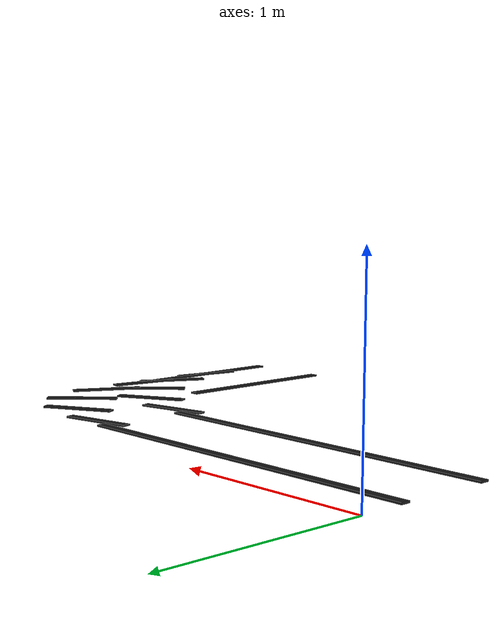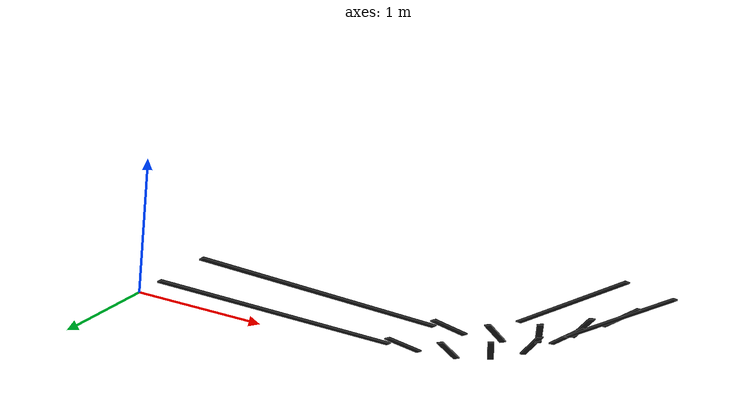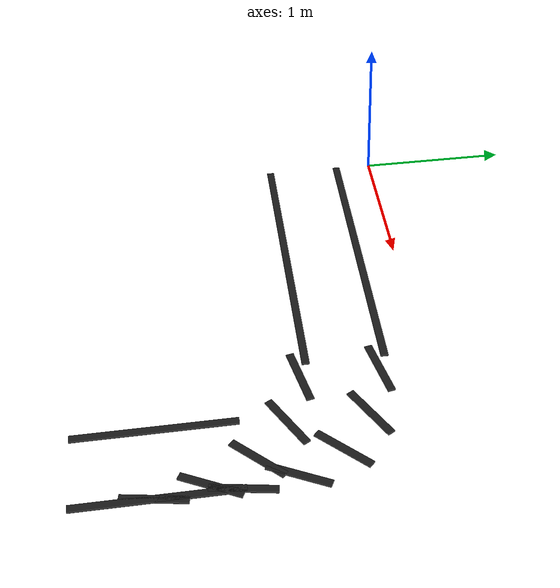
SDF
<?xml version="1.0" ?>
<sdf version="1.8">
  <model name="curved_track">
    <static>true</static>

    <!-- Left line - first straight section -->
    <link name="left_straight">
      <pose>1.0 -0.25 0.005 0 0 0</pose>
      <visual name="visual">
        <geometry>
          <box><size>2.0 0.05 0.01</size></box>
        </geometry>
        <material>
          <ambient>0.1 0.1 0.1 1</ambient>
          <diffuse>0.1 0.1 0.1 1</diffuse>
        </material>
      </visual>
    </link>

    <!-- Right line - first straight section -->
    <link name="right_straight">
      <pose>1.0 -0.75 0.005 0 0 0</pose>
      <visual name="visual">
        <geometry>
          <box><size>2.0 0.05 0.01</size></box>
        </geometry>
        <material>
          <ambient>0.1 0.1 0.1 1</ambient>
          <diffuse>0.1 0.1 0.1 1</diffuse>
        </material>
      </visual>
    </link>

    <!-- Left line - curve segments -->
    <link name="left_curve1">
      <pose>2.1 -0.30 0.005 0 0 0.2</pose>
      <visual name="visual">
        <geometry>
          <box><size>0.4 0.05 0.01</size></box>
        </geometry>
        <material>
          <ambient>0.1 0.1 0.1 1</ambient>
          <diffuse>0.1 0.1 0.1 1</diffuse>
        </material>
      </visual>
    </link>

    <link name="left_curve2">
      <pose>2.45 -0.42 0.005 0 0 0.5</pose>
      <visual name="visual">
        <geometry>
          <box><size>0.4 0.05 0.01</size></box>
        </geometry>
        <material>
          <ambient>0.1 0.1 0.1 1</ambient>
          <diffuse>0.1 0.1 0.1 1</diffuse>
        </material>
      </visual>
    </link>

    <link name="left_curve3">
      <pose>2.70 -0.62 0.005 0 0 0.8</pose>
      <visual name="visual">
        <geometry>
          <box><size>0.4 0.05 0.01</size></box>
        </geometry>
        <material>
          <ambient>0.1 0.1 0.1 1</ambient>
          <diffuse>0.1 0.1 0.1 1</diffuse>
        </material>
      </visual>
    </link>

    <link name="left_curve4">
      <pose>2.85 -0.90 0.005 0 0 1.1</pose>
      <visual name="visual">
        <geometry>
          <box><size>0.4 0.05 0.01</size></box>
        </geometry>
        <material>
          <ambient>0.1 0.1 0.1 1</ambient>
          <diffuse>0.1 0.1 0.1 1</diffuse>
        </material>
      </visual>
    </link>

    <link name="left_curve5">
      <pose>2.90 -1.22 0.005 0 0 1.4</pose>
      <visual name="visual">
        <geometry>
          <box><size>0.4 0.05 0.01</size></box>
        </geometry>
        <material>
          <ambient>0.1 0.1 0.1 1</ambient>
          <diffuse>0.1 0.1 0.1 1</diffuse>
        </material>
      </visual>
    </link>

    <!-- Right line - curve segments -->
    <link name="right_curve1">
      <pose>2.1 -0.80 0.005 0 0 0.2</pose>
      <visual name="visual">
        <geometry>
          <box><size>0.4 0.05 0.01</size></box>
        </geometry>
        <material>
          <ambient>0.1 0.1 0.1 1</ambient>
          <diffuse>0.1 0.1 0.1 1</diffuse>
        </material>
      </visual>
    </link>

    <link name="right_curve2">
      <pose>2.45 -0.92 0.005 0 0 0.5</pose>
      <visual name="visual">
        <geometry>
          <box><size>0.4 0.05 0.01</size></box>
        </geometry>
        <material>
          <ambient>0.1 0.1 0.1 1</ambient>
          <diffuse>0.1 0.1 0.1 1</diffuse>
        </material>
      </visual>
    </link>

    <link name="right_curve3">
      <pose>2.70 -1.12 0.005 0 0 0.8</pose>
      <visual name="visual">
        <geometry>
          <box><size>0.4 0.05 0.01</size></box>
        </geometry>
        <material>
          <ambient>0.1 0.1 0.1 1</ambient>
          <diffuse>0.1 0.1 0.1 1</diffuse>
        </material>
      </visual>
    </link>

    <link name="right_curve4">
      <pose>2.85 -1.40 0.005 0 0 1.1</pose>
      <visual name="visual">
        <geometry>
          <box><size>0.4 0.05 0.01</size></box>
        </geometry>
        <material>
          <ambient>0.1 0.1 0.1 1</ambient>
          <diffuse>0.1 0.1 0.1 1</diffuse>
        </material>
      </visual>
    </link>

    <link name="right_curve5">
      <pose>2.90 -1.72 0.005 0 0 1.4</pose>
      <visual name="visual">
        <geometry>
          <box><size>0.4 0.05 0.01</size></box>
        </geometry>
        <material>
          <ambient>0.1 0.1 0.1 1</ambient>
          <diffuse>0.1 0.1 0.1 1</diffuse>
        </material>
      </visual>
    </link>

    <!-- Straight section after curve -->
    <link name="left_after">
      <pose>2.90 -1.70 0.005 0 0 1.57</pose>
      <visual name="visual">
        <geometry>
          <box><size>1.0 0.05 0.01</size></box>
        </geometry>
        <material>
          <ambient>0.1 0.1 0.1 1</ambient>
          <diffuse>0.1 0.1 0.1 1</diffuse>
        </material>
      </visual>
    </link>

    <link name="right_after">
      <pose>2.40 -1.70 0.005 0 0 1.57</pose>
      <visual name="visual">
        <geometry>
          <box><size>1.0 0.05 0.01</size></box>
        </geometry>
        <material>
          <ambient>0.1 0.1 0.1 1</ambient>
          <diffuse>0.1 0.1 0.1 1</diffuse>
        </material>
      </visual>
    </link>

  </model>
</sdf>
